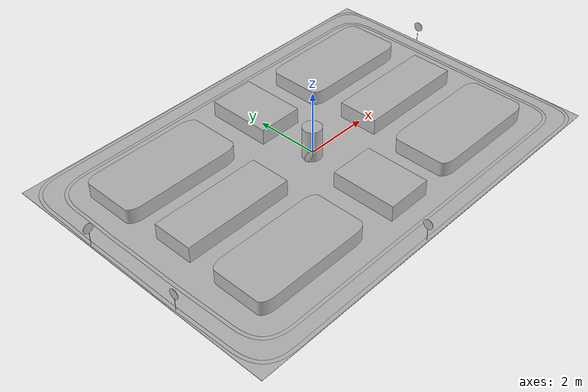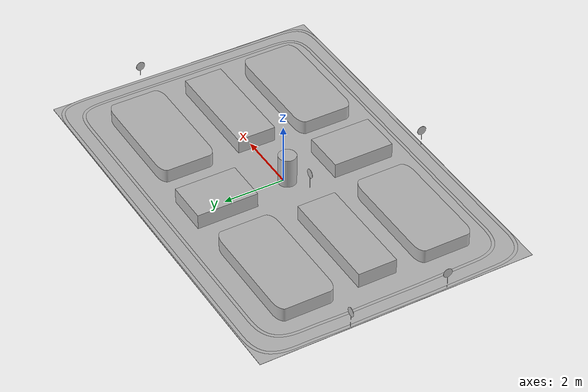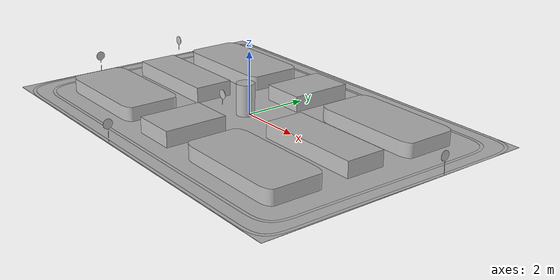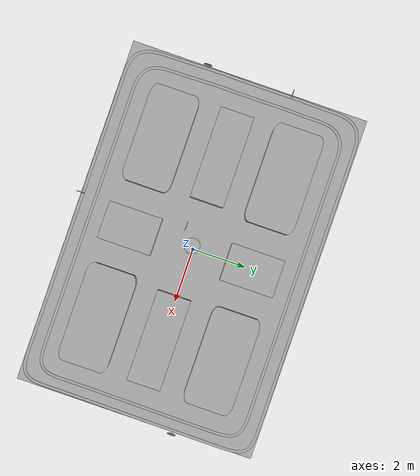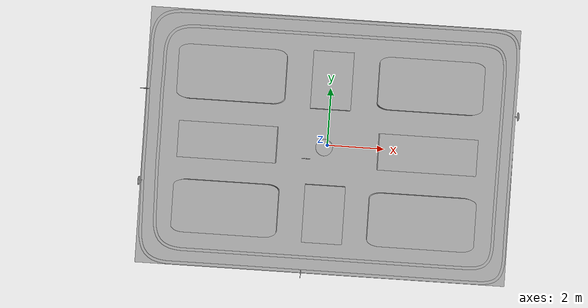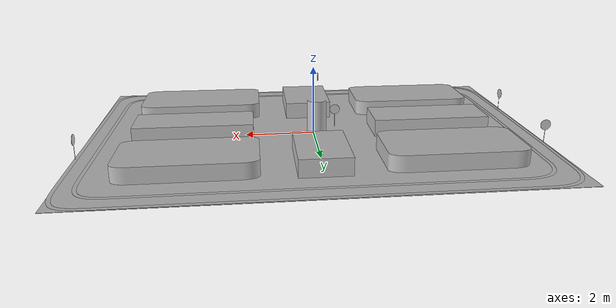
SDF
<sdf version='1.10'>
  <world name='empty'>
    <physics name='1ms' type='ignored'>
      <max_step_size>0.001</max_step_size>
      <real_time_factor>1</real_time_factor>
    </physics>

    <plugin
        filename="ignition-gazebo-physics-system"
        name="ignition::gazebo::systems::Physics">
    </plugin>
    <plugin
        filename="ignition-gazebo-user-commands-system"
        name="ignition::gazebo::systems::UserCommands">
    </plugin>
    <plugin
        filename="ignition-gazebo-scene-broadcaster-system"
        name="ignition::gazebo::systems::SceneBroadcaster">
    </plugin>
    <plugin
        filename="ignition-gazebo-contact-system"
        name="ignition::gazebo::systems::Contact">
    </plugin>
    <gravity>0 0 -9.8000000000000007</gravity>
    <magnetic_field>5.5644999999999998e-06 2.2875799999999999e-05 -4.2388400000000002e-05</magnetic_field>
    <atmosphere type='adiabatic'/>
    <scene>
      <ambient>0.400000006 0.400000006 0.400000006 1</ambient>
      <background>0.699999988 0.699999988 0.699999988 1</background>
      <shadows>true</shadows>
    </scene>
    <model name='asfalto_chao'>
      <link name='link'>
        <visual name='visual'>
          <geometry>
            <mesh>
              <uri>../meshes/world/asfalto_chao.obj</uri>
            </mesh>
          </geometry>
        </visual>
        <collision name='collision'>
          <geometry>
            <mesh>
              <uri>../meshes/world/asfalto_chao.obj</uri>
            </mesh>
          </geometry>
        </collision>
        <pose>0 0 0 0 0 0</pose>
        <inertial>
          <pose>0 0 0 0 0 0</pose>
          <mass>1</mass>
          <inertia>
            <ixx>1</ixx>
            <ixy>0</ixy>
            <ixz>0</ixz>
            <iyy>1</iyy>
            <iyz>0</iyz>
            <izz>1</izz>
          </inertia>
        </inertial>
        <enable_wind>false</enable_wind>
      </link>
      <pose>0.022187269666607001 -0.028241638605585987 0 0 0 0</pose>
      <static>true</static>
      <self_collide>false</self_collide>
    </model>
    <model name='faixa_branca'>
      <link name='link'>
        <visual name='visual'>
          <geometry>
            <mesh>
              <uri>../meshes/world/faixa_branca.obj</uri>
            </mesh>
          </geometry>
        </visual>
        <pose>0 0 0 0 0 0</pose>
        <inertial>
          <pose>0 0 0 0 0 0</pose>
          <mass>1</mass>
          <inertia>
            <ixx>1</ixx>
            <ixy>0</ixy>
            <ixz>0</ixz>
            <iyy>1</iyy>
            <iyz>0</iyz>
            <izz>1</izz>
          </inertia>
        </inertial>
        <enable_wind>false</enable_wind>
      </link>
      <pose>0.044671721756458282 -0.032404899597167969 0 0 0 0</pose>
      <static>true</static>
      <self_collide>false</self_collide>
    </model>
    <model name='faixa_amarela'>
      <link name='link'>
        <visual name='visual'>
          <geometry>
            <mesh>
              <uri>../meshes/world/faixa_amarela.obj</uri>
            </mesh>
          </geometry>
        </visual>
        <pose>0 0 0 0 0 0</pose>
        <inertial>
          <pose>0 0 0 0 0 0</pose>
          <mass>1</mass>
          <inertia>
            <ixx>1</ixx>
            <ixy>0</ixy>
            <ixz>0</ixz>
            <iyy>1</iyy>
            <iyz>0</iyz>
            <izz>1</izz>
          </inertia>
        </inertial>
        <enable_wind>false</enable_wind>
      </link>
      <pose>0.010178359436867235 -0.04055731586662023 0 0 0 0</pose>
      <static>true</static>
      <self_collide>false</self_collide>
    </model>
    <model name='quarteirao'>
      <link name='link'>
        <visual name='visual'>
          <geometry>
            <mesh>
              <uri>../meshes/world/quarteirao.obj</uri>
            </mesh>
          </geometry>
        </visual>
        <collision name='collision'>
          <geometry>
            <mesh>
              <uri>../meshes/world/quarteirao.obj</uri>
            </mesh>
          </geometry>
        </collision>
        <pose>0 0 0 0 0 0</pose>
        <inertial>
          <pose>0 0 0 0 0 0</pose>
          <mass>1</mass>
          <inertia>
            <ixx>1</ixx>
            <ixy>0</ixy>
            <ixz>0</ixz>
            <iyy>1</iyy>
            <iyz>0</iyz>
            <izz>1</izz>
          </inertia>
        </inertial>
        <enable_wind>false</enable_wind>
      </link>
      <pose>-0.10485079141842135 -0.074839449501267419 0 0 0 0</pose>
      <static>true</static>
      <self_collide>false</self_collide>
    </model>
    <model name='esquerda'>
      <link name='link'>
        <visual name='visual'>
          <geometry>
            <mesh>
              <uri>../meshes/world/esquerda.obj</uri>
            </mesh>
          </geometry>
        </visual>
        <collision name='collision'>
          <geometry>
            <mesh>
              <uri>../meshes/world/esquerda.obj</uri>
            </mesh>
          </geometry>
        </collision>
        <pose>0 0 0 0 0 0</pose>
        <inertial>
          <pose>0 0 0 0 0 0</pose>
          <mass>1</mass>
          <inertia>
            <ixx>1</ixx>
            <ixy>0</ixy>
            <ixz>0</ixz>
            <iyy>1</iyy>
            <iyz>0</iyz>
            <izz>1</izz>
          </inertia>
        </inertial>
        <enable_wind>false</enable_wind>
      </link>
      <pose>-0.63174402713775646 -4.4693799018859872 0 0 0 3.1339264801668039</pose>
      <static>true</static>
      <self_collide>false</self_collide>
    </model>
    <model name='esquerda_0'>
      <link name='link'>
        <visual name='visual'>
          <geometry>
            <mesh>
              <uri>../meshes/world/esquerda.obj</uri>
            </mesh>
          </geometry>
        </visual>
        <collision name='collision'>
          <geometry>
            <mesh>
              <uri>../meshes/world/esquerda.obj</uri>
            </mesh>
          </geometry>
        </collision>
        <pose>0 0 0 0 0 0</pose>
        <inertial>
          <pose>0 0 0 0 0 0</pose>
          <mass>1</mass>
          <inertia>
            <ixx>1</ixx>
            <ixy>0</ixy>
            <ixz>0</ixz>
            <iyy>1</iyy>
            <iyz>0</iyz>
            <izz>1</izz>
          </inertia>
        </inertial>
        <enable_wind>false</enable_wind>
      </link>
      <pose>-0.70449697971343994 -0.5023769736289978 0 0 0 -1.5852439976242649</pose>
      <static>true</static>
      <self_collide>false</self_collide>
    </model>
    <model name='direita'>
      <link name='link'>
        <visual name='visual'>
          <geometry>
            <mesh>
              <uri>../meshes/world/direita.obj</uri>
            </mesh>
          </geometry>
        </visual>
        <collision name='collision'>
          <geometry>
            <mesh>
              <uri>../meshes/world/direita.obj</uri>
            </mesh>
          </geometry>
        </collision>
        <pose>0 0 0 0 0 0</pose>
        <inertial>
          <pose>0 0 0 0 0 0</pose>
          <mass>1</mass>
          <inertia>
            <ixx>1</ixx>
            <ixy>0</ixy>
            <ixz>0</ixz>
            <iyy>1</iyy>
            <iyz>0</iyz>
            <izz>1</izz>
          </inertia>
        </inertial>
        <enable_wind>false</enable_wind>
      </link>
      <pose>-6.4105654043696543 -1.6389493317519579 0 0 0 0</pose>
      <static>true</static>
      <self_collide>false</self_collide>
    </model>
    <model name='direita_0'>
      <link name='link'>
        <visual name='visual'>
          <geometry>
            <mesh>
              <uri>../meshes/world/direita.obj</uri>
            </mesh>
          </geometry>
        </visual>
        <collision name='collision'>
          <geometry>
            <mesh>
              <uri>../meshes/world/direita.obj</uri>
            </mesh>
          </geometry>
        </collision>
        <pose>0 0 0 0 0 0</pose>
        <inertial>
          <pose>0 0 0 0 0 0</pose>
          <mass>1</mass>
          <inertia>
            <ixx>1</ixx>
            <ixy>0</ixy>
            <ixz>0</ixz>
            <iyy>1</iyy>
            <iyz>0</iyz>
            <izz>1</izz>
          </inertia>
        </inertial>
        <enable_wind>false</enable_wind>
      </link>
      <pose>-6.4188299179077148 1.5545899868011475 0 0 0 -1.5674182450665546</pose>
      <static>true</static>
      <self_collide>false</self_collide>
    </model>
    <model name='direita_1'>
      <link name='link'>
        <visual name='visual'>
          <geometry>
            <mesh>
              <uri>../meshes/world/direita.obj</uri>
            </mesh>
          </geometry>
        </visual>
        <collision name='collision'>
          <geometry>
            <mesh>
              <uri>../meshes/world/direita.obj</uri>
            </mesh>
          </geometry>
        </collision>
        <pose>0 0 0 0 0 0</pose>
        <inertial>
          <pose>0 0 0 0 0 0</pose>
          <mass>1</mass>
          <inertia>
            <ixx>1</ixx>
            <ixy>0</ixy>
            <ixz>0</ixz>
            <iyy>1</iyy>
            <iyz>0</iyz>
            <izz>1</izz>
          </inertia>
        </inertial>
        <enable_wind>false</enable_wind>
      </link>
      <pose>6.4979600906372061 1.4458299875259399 3.2959746043559335e-17 -0.041986366087003991 0.0011040519304435484 -3.1153181636746008</pose>
      <static>true</static>
      <self_collide>false</self_collide>
    </model>
    <light name='sun' type='directional'>
      <pose>0 0 10 0 0 0</pose>
      <cast_shadows>true</cast_shadows>
      <intensity>1</intensity>
      <direction>-0.5 0.10000000000000001 -0.90000000000000002</direction>
      <diffuse>0.800000012 0.800000012 0.800000012 1</diffuse>
      <specular>0.200000003 0.200000003 0.200000003 1</specular>
      <attenuation>
        <range>1000</range>
        <linear>0.01</linear>
        <constant>0.90000000000000002</constant>
        <quadratic>0.001</quadratic>
      </attenuation>
      <spot>
        <inner_angle>0</inner_angle>
        <outer_angle>0</outer_angle>
        <falloff>0</falloff>
      </spot>
    </light>
  </world>
</sdf>
